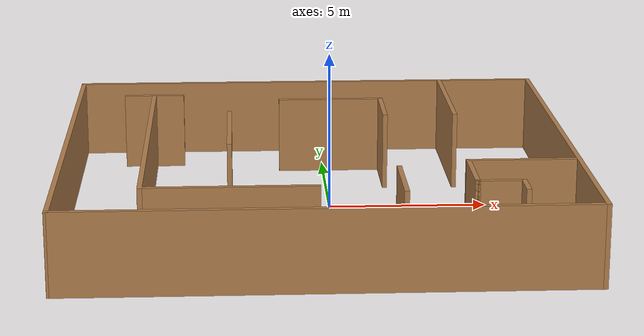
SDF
<?xml version='1.0'?>
<sdf version='1.7'>
  <model name='map_eddie_bot'>
    <pose>-0.440167 -0.562829 0 0 -0 0</pose>
    <link name='Wall_30'>
      <collision name='Wall_30_Collision'>
        <geometry>
          <box>
            <size>14.5741 0.15 2.5</size>
          </box>
        </geometry>
        <pose>0 0 1.25 0 -0 0</pose>
      </collision>
      <visual name='Wall_30_Visual'>
        <pose>0 0 1.25 0 -0 0</pose>
        <geometry>
          <box>
            <size>14.5741 0.15 2.5</size>
          </box>
        </geometry>
        <material>
          <script>
            <uri>file://media/materials/scripts/gazebo.material</uri>
            <name>Gazebo/Wood</name>
          </script>
          <ambient>1 1 1 1</ambient>
        </material>
        <meta>
          <layer>0</layer>
        </meta>
      </visual>
      <pose>7.78261 0 0 0 -0 -1.57322</pose>
    </link>
    <link name='Wall_35'>
      <collision name='Wall_35_Collision'>
        <geometry>
          <box>
            <size>15.75 0.15 2.5</size>
          </box>
        </geometry>
        <pose>0 0 1.25 0 -0 0</pose>
      </collision>
      <visual name='Wall_35_Visual'>
        <pose>0 0 1.25 0 -0 0</pose>
        <geometry>
          <box>
            <size>15.75 0.15 2.5</size>
          </box>
        </geometry>
        <material>
          <script>
            <uri>file://media/materials/scripts/gazebo.material</uri>
            <name>Gazebo/Wood</name>
          </script>
          <ambient>1 1 1 1</ambient>
        </material>
        <meta>
          <layer>0</layer>
        </meta>
      </visual>
      <pose>0.000104 7.21205 0 0 -0 3.14159</pose>
    </link>
    <link name='Wall_36'>
      <collision name='Wall_36_Collision'>
        <geometry>
          <box>
            <size>14.5743 0.15 2.5</size>
          </box>
        </geometry>
        <pose>0 0 1.25 0 -0 0</pose>
      </collision>
      <visual name='Wall_36_Visual'>
        <pose>0 0 1.25 0 -0 0</pose>
        <geometry>
          <box>
            <size>14.5743 0.15 2.5</size>
          </box>
        </geometry>
        <material>
          <script>
            <uri>file://media/materials/scripts/gazebo.material</uri>
            <name>Gazebo/Wood</name>
          </script>
          <ambient>1 1 1 1</ambient>
        </material>
        <meta>
          <layer>0</layer>
        </meta>
      </visual>
      <pose>-7.76235 0 0 0 -0 -1.56559</pose>
    </link>
    <link name='Wall_38'>
      <collision name='Wall_38_Collision'>
        <geometry>
          <box>
            <size>15.5 0.15 2.5</size>
          </box>
        </geometry>
        <pose>0 0 1.25 0 -0 0</pose>
      </collision>
      <visual name='Wall_38_Visual'>
        <pose>0 0 1.25 0 -0 0</pose>
        <geometry>
          <box>
            <size>15.5 0.15 2.5</size>
          </box>
        </geometry>
        <material>
          <script>
            <uri>file://media/materials/scripts/gazebo.material</uri>
            <name>Gazebo/Wood</name>
          </script>
          <ambient>1 1 1 1</ambient>
        </material>
        <meta>
          <layer>0</layer>
        </meta>
      </visual>
      <pose>-0.049797 -7.21205 0 0 -0 0</pose>
    </link>
    <link name='Wall_40'>
      <collision name='Wall_40_Collision'>
        <geometry>
          <box>
            <size>10.75 0.15 2.5</size>
          </box>
        </geometry>
        <pose>0 0 1.25 0 -0 0</pose>
      </collision>
      <visual name='Wall_40_Visual'>
        <pose>0 0 1.25 0 -0 0</pose>
        <geometry>
          <box>
            <size>10.75 0.15 2.5</size>
          </box>
        </geometry>
        <material>
          <script>
            <uri>file://media/materials/scripts/gazebo.material</uri>
            <name>Gazebo/Wood</name>
          </script>
          <ambient>1 1 1 1</ambient>
        </material>
        <meta>
          <layer>0</layer>
        </meta>
      </visual>
      <pose>-5.27932 0.1577 0 0 -0 -1.5708</pose>
    </link>
    <link name='Wall_42'>
      <collision name='Wall_42_Collision'>
        <geometry>
          <box>
            <size>5.25 0.15 2.5</size>
          </box>
        </geometry>
        <pose>0 0 1.25 0 -0 0</pose>
      </collision>
      <visual name='Wall_42_Visual'>
        <pose>0 0 1.25 0 -0 0</pose>
        <geometry>
          <box>
            <size>5.25 0.15 2.5</size>
          </box>
        </geometry>
        <material>
          <script>
            <uri>file://media/materials/scripts/gazebo.material</uri>
            <name>Gazebo/Wood</name>
          </script>
          <ambient>1 1 1 1</ambient>
        </material>
        <meta>
          <layer>0</layer>
        </meta>
      </visual>
      <pose>-2.72932 -5.1423 0 0 -0 0</pose>
    </link>
    <link name='Wall_44'>
      <collision name='Wall_44_Collision'>
        <geometry>
          <box>
            <size>2.5 0.15 2.5</size>
          </box>
        </geometry>
        <pose>0 0 1.25 0 -0 0</pose>
      </collision>
      <visual name='Wall_44_Visual'>
        <pose>0 0 1.25 0 -0 0</pose>
        <geometry>
          <box>
            <size>2.5 0.15 2.5</size>
          </box>
        </geometry>
        <material>
          <script>
            <uri>file://media/materials/scripts/gazebo.material</uri>
            <name>Gazebo/Wood</name>
          </script>
          <ambient>1 1 1 1</ambient>
        </material>
        <meta>
          <layer>0</layer>
        </meta>
      </visual>
      <pose>2.30443 -4.54475 0 0 -0 -1.5708</pose>
    </link>
    <link name='Wall_48'>
      <collision name='Wall_48_Collision'>
        <geometry>
          <box>
            <size>4.75 0.15 2.5</size>
          </box>
        </geometry>
        <pose>0 0 1.25 0 -0 0</pose>
      </collision>
      <visual name='Wall_48_Visual'>
        <pose>0 0 1.25 0 -0 0</pose>
        <geometry>
          <box>
            <size>4.75 0.15 2.5</size>
          </box>
        </geometry>
        <material>
          <script>
            <uri>file://media/materials/scripts/gazebo.material</uri>
            <name>Gazebo/Wood</name>
          </script>
          <ambient>1 1 1 1</ambient>
        </material>
        <meta>
          <layer>0</layer>
        </meta>
      </visual>
      <pose>4.66715 4.89888 0 0 -0 -1.5708</pose>
    </link>
    <link name='Wall_50'>
      <collision name='Wall_50_Collision'>
        <geometry>
          <box>
            <size>4 0.15 2.5</size>
          </box>
        </geometry>
        <pose>0 0 1.25 0 -0 0</pose>
      </collision>
      <visual name='Wall_50_Visual'>
        <pose>0 0 1.25 0 -0 0</pose>
        <geometry>
          <box>
            <size>4 0.15 2.5</size>
          </box>
        </geometry>
        <material>
          <script>
            <uri>file://media/materials/scripts/gazebo.material</uri>
            <name>Gazebo/Wood</name>
          </script>
          <ambient>1 1 1 1</ambient>
        </material>
        <meta>
          <layer>0</layer>
        </meta>
      </visual>
      <pose>-2.7243 1.25877 0 0 -0 -1.5708</pose>
    </link>
    <link name='Wall_52'>
      <collision name='Wall_52_Collision'>
        <geometry>
          <box>
            <size>3.5 0.15 2.5</size>
          </box>
        </geometry>
        <pose>0 0 1.25 0 -0 0</pose>
      </collision>
      <visual name='Wall_52_Visual'>
        <pose>0 0 1.25 0 -0 0</pose>
        <geometry>
          <box>
            <size>3.5 0.15 2.5</size>
          </box>
        </geometry>
        <material>
          <script>
            <uri>file://media/materials/scripts/gazebo.material</uri>
            <name>Gazebo/Wood</name>
          </script>
          <ambient>1 1 1 1</ambient>
        </material>
        <meta>
          <layer>0</layer>
        </meta>
      </visual>
      <pose>6.1064 -2.77451 0 0 -0 3.14159</pose>
    </link>
    <link name='Wall_53'>
      <collision name='Wall_53_Collision'>
        <geometry>
          <box>
            <size>2.25 0.15 2.5</size>
          </box>
        </geometry>
        <pose>0 0 1.25 0 -0 0</pose>
      </collision>
      <visual name='Wall_53_Visual'>
        <pose>0 0 1.25 0 -0 0</pose>
        <geometry>
          <box>
            <size>2.25 0.15 2.5</size>
          </box>
        </geometry>
        <material>
          <script>
            <uri>file://media/materials/scripts/gazebo.material</uri>
            <name>Gazebo/Wood</name>
          </script>
          <ambient>1 1 1 1</ambient>
        </material>
        <meta>
          <layer>0</layer>
        </meta>
      </visual>
      <pose>4.4314 -3.82451 0 0 -0 -1.5708</pose>
    </link>
    <link name='Wall_54'>
      <collision name='Wall_54_Collision'>
        <geometry>
          <box>
            <size>1.5 0.15 2.5</size>
          </box>
        </geometry>
        <pose>0 0 1.25 0 -0 0</pose>
      </collision>
      <visual name='Wall_54_Visual'>
        <pose>0 0 1.25 0 -0 0</pose>
        <geometry>
          <box>
            <size>1.5 0.15 2.5</size>
          </box>
        </geometry>
        <material>
          <script>
            <uri>file://media/materials/scripts/gazebo.material</uri>
            <name>Gazebo/Wood</name>
          </script>
          <ambient>1 1 1 1</ambient>
        </material>
        <meta>
          <layer>0</layer>
        </meta>
      </visual>
      <pose>5.1064 -4.87451 0 0 -0 0</pose>
    </link>
    <link name='Wall_55'>
      <collision name='Wall_55_Collision'>
        <geometry>
          <box>
            <size>1 0.15 2.5</size>
          </box>
        </geometry>
        <pose>0 0 1.25 0 -0 0</pose>
      </collision>
      <visual name='Wall_55_Visual'>
        <pose>0 0 1.25 0 -0 0</pose>
        <geometry>
          <box>
            <size>1 0.15 2.5</size>
          </box>
        </geometry>
        <material>
          <script>
            <uri>file://media/materials/scripts/gazebo.material</uri>
            <name>Gazebo/Wood</name>
          </script>
          <ambient>1 1 1 1</ambient>
        </material>
        <meta>
          <layer>0</layer>
        </meta>
      </visual>
      <pose>5.7814 -5.29951 0 0 -0 -1.5708</pose>
    </link>
    <link name='Wall_57'>
      <collision name='Wall_57_Collision'>
        <geometry>
          <box>
            <size>2 0.15 2.5</size>
          </box>
        </geometry>
        <pose>0 0 1.25 0 -0 0</pose>
      </collision>
      <visual name='Wall_57_Visual'>
        <pose>0 0 1.25 0 -0 0</pose>
        <geometry>
          <box>
            <size>2 0.15 2.5</size>
          </box>
        </geometry>
        <material>
          <script>
            <uri>file://media/materials/scripts/gazebo.material</uri>
            <name>Gazebo/Wood</name>
          </script>
          <ambient>1 1 1 1</ambient>
        </material>
        <meta>
          <layer>0</layer>
        </meta>
      </visual>
      <pose>-5.2788 5.49071 0 0 -0 0</pose>
    </link>
    <link name='Wall_59'>
      <collision name='Wall_59_Collision'>
        <geometry>
          <box>
            <size>3.5 0.15 2.5</size>
          </box>
        </geometry>
        <pose>0 0 1.25 0 -0 0</pose>
      </collision>
      <visual name='Wall_59_Visual'>
        <pose>0 0 1.25 0 -0 0</pose>
        <geometry>
          <box>
            <size>3.5 0.15 2.5</size>
          </box>
        </geometry>
        <material>
          <script>
            <uri>file://media/materials/scripts/gazebo.material</uri>
            <name>Gazebo/Wood</name>
          </script>
          <ambient>1 1 1 1</ambient>
        </material>
        <meta>
          <layer>0</layer>
        </meta>
      </visual>
      <pose>0.702125 4.72596 0 0 -0 0</pose>
    </link>
    <link name='Wall_60'>
      <collision name='Wall_60_Collision'>
        <geometry>
          <box>
            <size>2.25 0.15 2.5</size>
          </box>
        </geometry>
        <pose>0 0 1.25 0 -0 0</pose>
      </collision>
      <visual name='Wall_60_Visual'>
        <pose>0 0 1.25 0 -0 0</pose>
        <geometry>
          <box>
            <size>2.25 0.15 2.5</size>
          </box>
        </geometry>
        <material>
          <script>
            <uri>file://media/materials/scripts/gazebo.material</uri>
            <name>Gazebo/Wood</name>
          </script>
          <ambient>1 1 1 1</ambient>
        </material>
        <meta>
          <layer>0</layer>
        </meta>
      </visual>
      <pose>2.37712 3.67596 0 0 -0 -1.5708</pose>
    </link>
    <static>1</static>
  </model>
</sdf>
